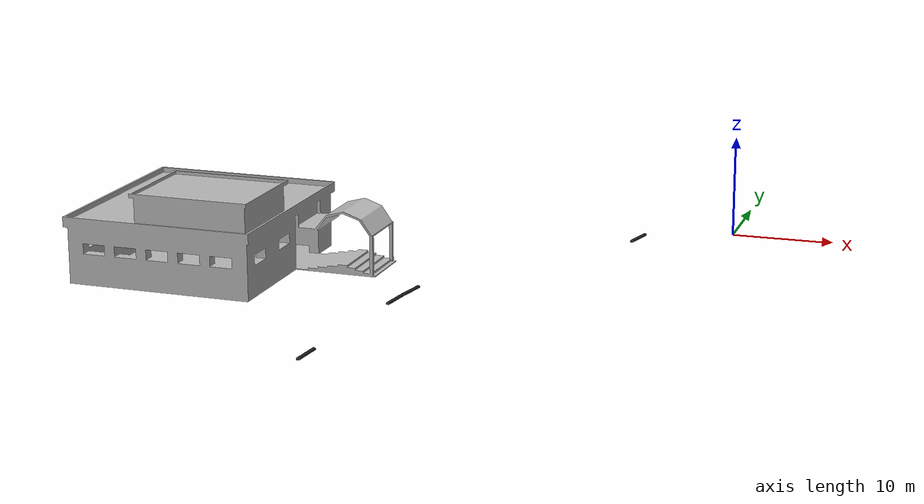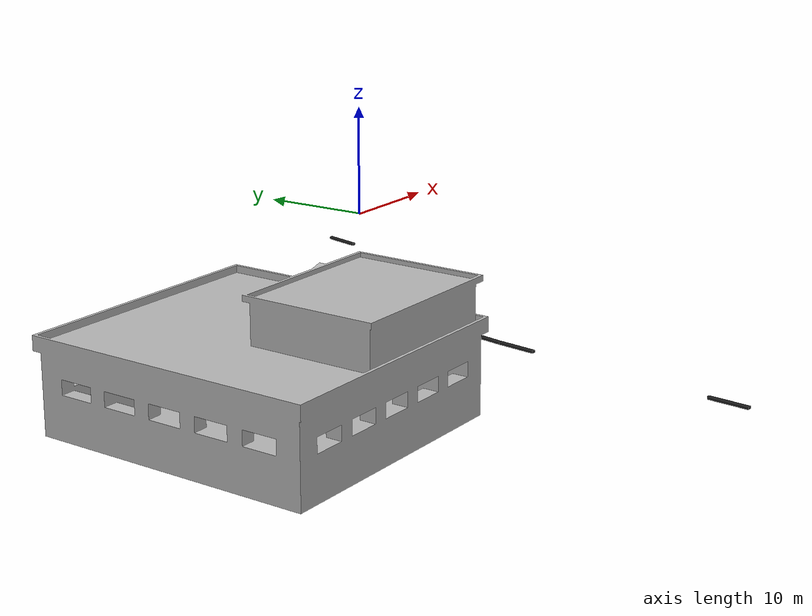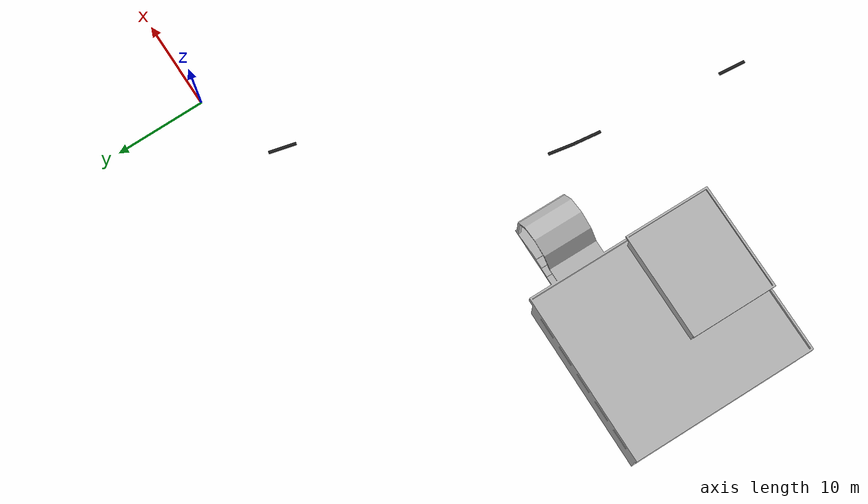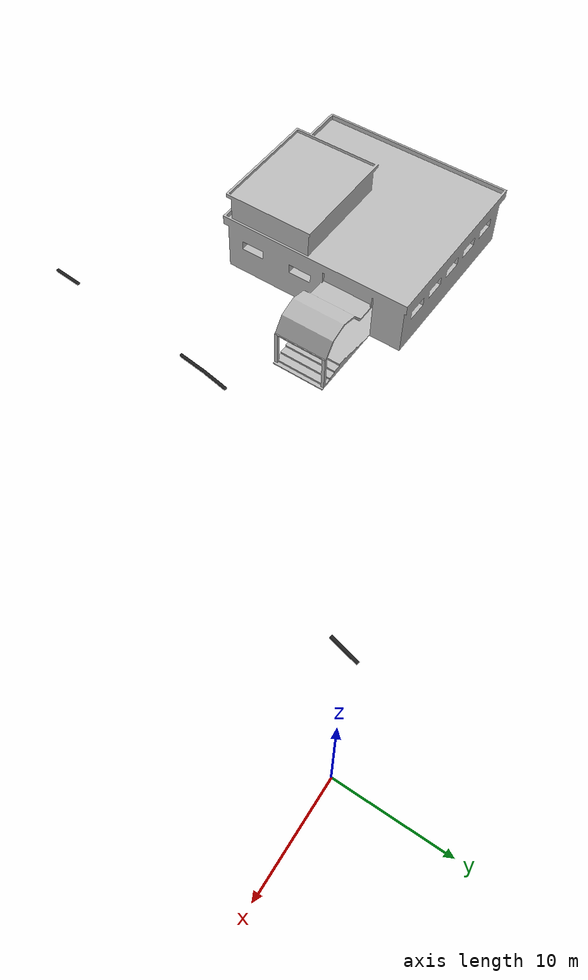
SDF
<sdf version="1.7">
 <world name="default">
  <model name="bar2_3">
   <static>1</static>
   <link name="link_3">
    <inertial>
     <mass>1</mass>
     <inertia>
      <ixx>0.166667</ixx>
      <ixy>0</ixy>
      <ixz>0</ixz>
      <iyy>0.166667</iyy>
      <iyz>0</iyz>
      <izz>0.166667</izz>
     </inertia>
    </inertial>
    <pose>4.47991 -0.091961 0 0 -0 0</pose>
    <visual name="visual">
     <geometry>
      <mesh><uri>/home/leejeonghun/model_editor_models/bar2.dae</uri><scale>1 1 1</scale></mesh>
     </geometry>
     <material>
      <lighting>1</lighting>
      <script><uri>file://media/materials/scripts/gazebo.material</uri><name>Gazebo/Black</name></script>
      <shader type="pixel"/>
     </material>
    </visual>
    <collision name="collision">
     <geometry>
      <mesh><uri>/home/leejeonghun/model_editor_models/bar2.dae</uri><scale>1 1 1</scale></mesh>
     </geometry>
     <surface>
      <friction>
       <ode><mu>1</mu><mu2>1</mu2><fdir1>0 0 0</fdir1><slip1>0</slip1><slip2>0</slip2></ode>
       <torsional>
        <coefficient>1</coefficient>
        <patch_radius>0</patch_radius>
        <surface_radius>0</surface_radius>
        <use_patch_radius>1</use_patch_radius>
        <ode><slip>0</slip></ode>
       </torsional>
      </friction>
      <bounce><restitution_coefficient>0</restitution_coefficient><threshold>1e+06</threshold></bounce>
      <contact>
       <collide_without_contact>0</collide_without_contact>
       <collide_without_contact_bitmask>1</collide_without_contact_bitmask>
       <collide_bitmask>1</collide_bitmask>
       <ode>
        <soft_cfm>0</soft_cfm>
        <soft_erp>0.2</soft_erp>
        <kp>1e+13</kp>
        <kd>1</kd>
        <max_vel>0.01</max_vel>
        <min_depth>0</min_depth>
       </ode>
       <bullet>
        <split_impulse>1</split_impulse>
        <split_impulse_penetration_threshold>-0.01</split_impulse_penetration_threshold>
        <soft_cfm>0</soft_cfm>
        <soft_erp>0.2</soft_erp>
        <kp>1e+13</kp>
        <kd>1</kd>
       </bullet>
      </contact>
     </surface>
    </collision>
   </link>
   <static>0</static>
   <pose>-15.9336 -13.5824 0 0 -0 1.37702</pose>
  </model>
  <model name="bar2_4">
   <static>1</static>
   <link name="link_3">
    <inertial>
     <mass>1</mass>
     <inertia>
      <ixx>0.166667</ixx>
      <ixy>0</ixy>
      <ixz>0</ixz>
      <iyy>0.166667</iyy>
      <iyz>0</iyz>
      <izz>0.166667</izz>
     </inertia>
    </inertial>
    <pose>4.47991 -0.091961 0 0 -0 0</pose>
    <visual name="visual">
     <geometry>
      <mesh><uri>/home/leejeonghun/model_editor_models/bar2.dae</uri><scale>1 1 1</scale></mesh>
     </geometry>
     <material>
      <lighting>1</lighting>
      <script><uri>file://media/materials/scripts/gazebo.material</uri><name>Gazebo/Black</name></script>
      <shader type="pixel"/>
     </material>
    </visual>
    <collision name="collision">
     <geometry>
      <mesh><uri>/home/leejeonghun/model_editor_models/bar2.dae</uri><scale>1 1 1</scale></mesh>
     </geometry>
     <surface>
      <friction>
       <ode><mu>1</mu><mu2>1</mu2><fdir1>0 0 0</fdir1><slip1>0</slip1><slip2>0</slip2></ode>
       <torsional>
        <coefficient>1</coefficient>
        <patch_radius>0</patch_radius>
        <surface_radius>0</surface_radius>
        <use_patch_radius>1</use_patch_radius>
        <ode><slip>0</slip></ode>
       </torsional>
      </friction>
      <bounce><restitution_coefficient>0</restitution_coefficient><threshold>1e+06</threshold></bounce>
      <contact>
       <collide_without_contact>0</collide_without_contact>
       <collide_without_contact_bitmask>1</collide_without_contact_bitmask>
       <collide_bitmask>1</collide_bitmask>
       <ode>
        <soft_cfm>0</soft_cfm>
        <soft_erp>0.2</soft_erp>
        <kp>1e+13</kp>
        <kd>1</kd>
        <max_vel>0.01</max_vel>
        <min_depth>0</min_depth>
       </ode>
       <bullet>
        <split_impulse>1</split_impulse>
        <split_impulse_penetration_threshold>-0.01</split_impulse_penetration_threshold>
        <soft_cfm>0</soft_cfm>
        <soft_erp>0.2</soft_erp>
        <kp>1e+13</kp>
        <kd>1</kd>
       </bullet>
      </contact>
     </surface>
    </collision>
   </link>
   <static>0</static>
   <pose>-17.1899 -16.0509 0 0 -0 1.42906</pose>
  </model>
  <model name="bar2_5">
   <static>1</static>
   <link name="link_3">
    <inertial>
     <mass>1</mass>
     <inertia>
      <ixx>0.166667</ixx>
      <ixy>0</ixy>
      <ixz>0</ixz>
      <iyy>0.166667</iyy>
      <iyz>0</iyz>
      <izz>0.166667</izz>
     </inertia>
    </inertial>
    <pose>4.47991 -0.091961 0 0 -0 0</pose>
    <visual name="visual">
     <geometry>
      <mesh><uri>/home/leejeonghun/model_editor_models/bar2.dae</uri><scale>1 1 1</scale></mesh>
     </geometry>
     <material>
      <lighting>1</lighting>
      <script><uri>file://media/materials/scripts/gazebo.material</uri><name>Gazebo/Black</name></script>
      <shader type="pixel"/>
     </material>
    </visual>
    <collision name="collision">
     <geometry>
      <mesh><uri>/home/leejeonghun/model_editor_models/bar2.dae</uri><scale>1 1 1</scale></mesh>
     </geometry>
     <surface>
      <friction>
       <ode><mu>1</mu><mu2>1</mu2><fdir1>0 0 0</fdir1><slip1>0</slip1><slip2>0</slip2></ode>
       <torsional>
        <coefficient>1</coefficient>
        <patch_radius>0</patch_radius>
        <surface_radius>0</surface_radius>
        <use_patch_radius>1</use_patch_radius>
        <ode><slip>0</slip></ode>
       </torsional>
      </friction>
      <bounce><restitution_coefficient>0</restitution_coefficient><threshold>1e+06</threshold></bounce>
      <contact>
       <collide_without_contact>0</collide_without_contact>
       <collide_without_contact_bitmask>1</collide_without_contact_bitmask>
       <collide_bitmask>1</collide_bitmask>
       <ode>
        <soft_cfm>0</soft_cfm>
        <soft_erp>0.2</soft_erp>
        <kp>1e+13</kp>
        <kd>1</kd>
        <max_vel>0.01</max_vel>
        <min_depth>0</min_depth>
       </ode>
       <bullet>
        <split_impulse>1</split_impulse>
        <split_impulse_penetration_threshold>-0.01</split_impulse_penetration_threshold>
        <soft_cfm>0</soft_cfm>
        <soft_erp>0.2</soft_erp>
        <kp>1e+13</kp>
        <kd>1</kd>
       </bullet>
      </contact>
     </surface>
    </collision>
   </link>
   <static>0</static>
   <pose>-19.7754 -32.5932 0 0 -0 1.46324</pose>
  </model>
  <model name="bar2_10">
   <static>1</static>
   <link name="link_3">
    <inertial>
     <mass>1</mass>
     <inertia>
      <ixx>0.166667</ixx>
      <ixy>0</ixy>
      <ixz>0</ixz>
      <iyy>0.166667</iyy>
      <iyz>0</iyz>
      <izz>0.166667</izz>
     </inertia>
    </inertial>
    <pose>4.47991 -0.091961 0 0 -0 0</pose>
    <visual name="visual">
     <geometry>
      <mesh><uri>/home/leejeonghun/model_editor_models/bar2.dae</uri><scale>1 1 1</scale></mesh>
     </geometry>
     <material>
      <lighting>1</lighting>
      <script><uri>file://media/materials/scripts/gazebo.material</uri><name>Gazebo/Black</name></script>
      <shader type="pixel"/>
     </material>
    </visual>
    <collision name="collision">
     <geometry>
      <mesh><uri>/home/leejeonghun/model_editor_models/bar2.dae</uri><scale>1 1 1</scale></mesh>
     </geometry>
     <surface>
      <friction>
       <ode><mu>1</mu><mu2>1</mu2><fdir1>0 0 0</fdir1><slip1>0</slip1><slip2>0</slip2></ode>
       <torsional>
        <coefficient>1</coefficient>
        <patch_radius>0</patch_radius>
        <surface_radius>0</surface_radius>
        <use_patch_radius>1</use_patch_radius>
        <ode><slip>0</slip></ode>
       </torsional>
      </friction>
      <bounce><restitution_coefficient>0</restitution_coefficient><threshold>1e+06</threshold></bounce>
      <contact>
       <collide_without_contact>0</collide_without_contact>
       <collide_without_contact_bitmask>1</collide_without_contact_bitmask>
       <collide_bitmask>1</collide_bitmask>
       <ode>
        <soft_cfm>0</soft_cfm>
        <soft_erp>0.2</soft_erp>
        <kp>1e+13</kp>
        <kd>1</kd>
        <max_vel>0.01</max_vel>
        <min_depth>0</min_depth>
       </ode>
       <bullet>
        <split_impulse>1</split_impulse>
        <split_impulse_penetration_threshold>-0.01</split_impulse_penetration_threshold>
        <soft_cfm>0</soft_cfm>
        <soft_erp>0.2</soft_erp>
        <kp>1e+13</kp>
        <kd>1</kd>
       </bullet>
      </contact>
     </surface>
    </collision>
   </link>
   <static>0</static>
   <pose>-18.4419 -18.3638 0 0 0 -1.81809</pose>
  </model>
  <model name="build11">
   <static>1</static>
   <link name="link_0">
    <inertial>
     <mass>1</mass>
     <inertia>
      <ixx>0.166667</ixx>
      <ixy>0</ixy>
      <ixz>0</ixz>
      <iyy>0.166667</iyy>
      <iyz>0</iyz>
      <izz>0.166667</izz>
     </inertia>
    </inertial>
    <pose>1e-06 0 0 0 -0 0</pose>
    <visual name="visual">
     <geometry>
      <mesh><uri>/home/leejeonghun/model_editor_models/build11.dae</uri><scale>1.1 1.01 1</scale></mesh>
     </geometry>
     <material>
      <lighting>1</lighting>
      <script><uri>/home/leejeonghun/model_editor_models/ind2.jpg</uri><name>__default__</name></script>
      <shader type="pixel"><normal_map>__default__</normal_map></shader>
     </material>
    </visual>
    <collision name="collision">
     <geometry>
      <mesh><uri>/home/leejeonghun/model_editor_models/build11.dae</uri><scale>1.1 1.01 1</scale></mesh>
     </geometry>
     <surface>
      <friction>
       <ode><mu>1</mu><mu2>1</mu2><fdir1>0 0 0</fdir1><slip1>0</slip1><slip2>0</slip2></ode>
       <torsional>
        <coefficient>1</coefficient>
        <patch_radius>0</patch_radius>
        <surface_radius>0</surface_radius>
        <use_patch_radius>1</use_patch_radius>
        <ode><slip>0</slip></ode>
       </torsional>
      </friction>
      <bounce><restitution_coefficient>0</restitution_coefficient><threshold>1e+06</threshold></bounce>
      <contact>
       <collide_without_contact>0</collide_without_contact>
       <collide_without_contact_bitmask>1</collide_without_contact_bitmask>
       <collide_bitmask>1</collide_bitmask>
       <ode>
        <soft_cfm>0</soft_cfm>
        <soft_erp>0.2</soft_erp>
        <kp>1e+13</kp>
        <kd>1</kd>
        <max_vel>0.01</max_vel>
        <min_depth>0</min_depth>
       </ode>
       <bullet>
        <split_impulse>1</split_impulse>
        <split_impulse_penetration_threshold>-0.01</split_impulse_penetration_threshold>
        <soft_cfm>0</soft_cfm>
        <soft_erp>0.2</soft_erp>
        <kp>1e+13</kp>
        <kd>1</kd>
       </bullet>
      </contact>
     </surface>
    </collision>
   </link>
   <static>0</static>
   <pose>-46.6597 -25.4217 0 0 0 -1.59755</pose>
  </model>
 </world>
</sdf>
